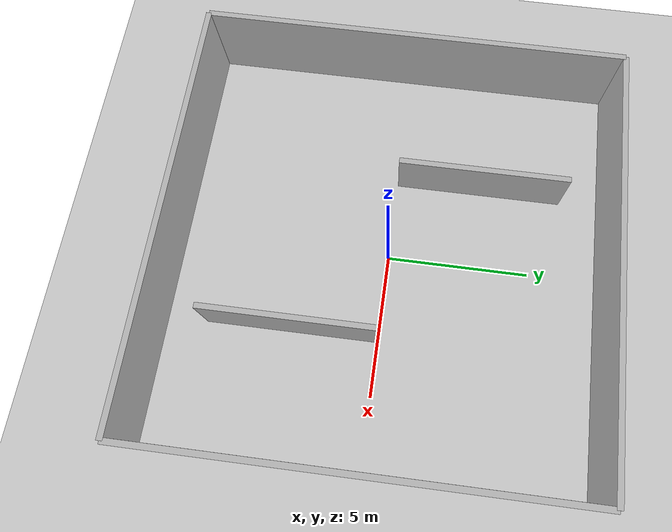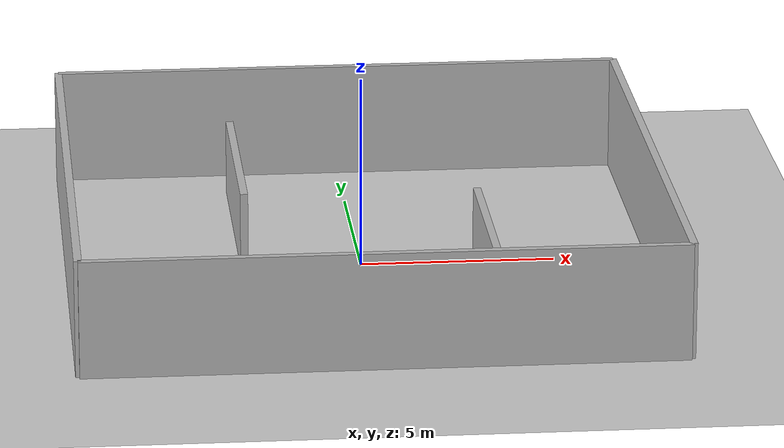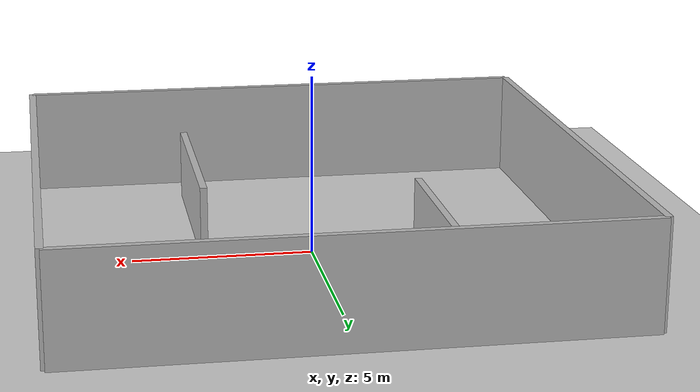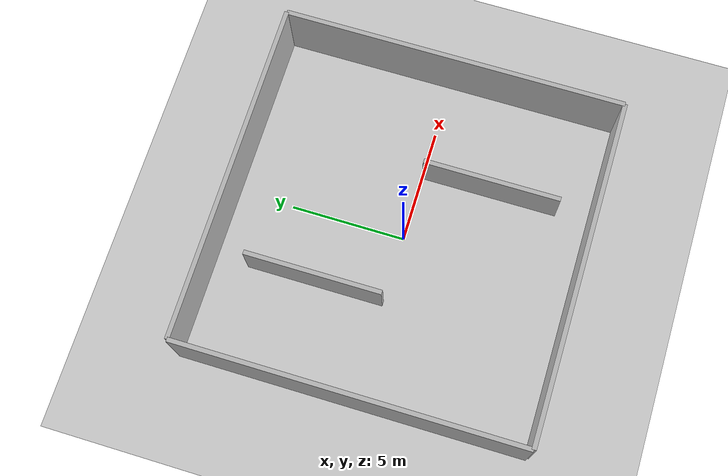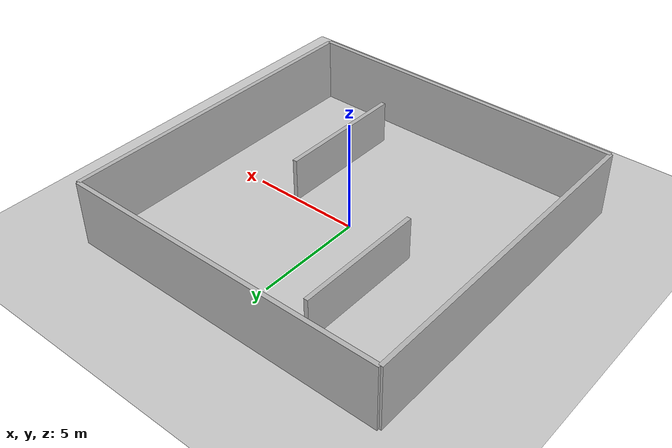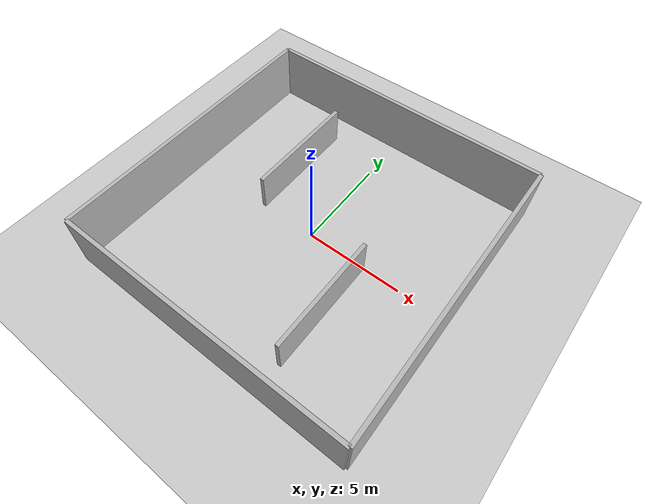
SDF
<sdf version="1.7">
  <world name="default">
    <include>
      <uri>model://sun</uri>
    </include>

    <!-- Define the walls -->
    <model name='ground_plane'>
      <static>1</static>
      <link name='link'>
        <collision name='collision'>
          <geometry>
            <plane>
              <normal>0 0 1</normal>
              <size>100 100</size>
            </plane>
          </geometry>
          <surface>
            <contact>
              <collide_bitmask>65535</collide_bitmask>
              <ode/>
            </contact>
            <friction>
              <ode>
                <mu>100</mu>
                <mu2>50</mu2>
              </ode>
              <torsional>
                <ode/>
              </torsional>
            </friction>
            <bounce/>
          </surface>
          <max_contacts>10</max_contacts>
        </collision>
        <visual name='visual'>
          <cast_shadows>0</cast_shadows>
          <geometry>
            <plane>
              <normal>0 0 1</normal>
              <size>100 100</size>
            </plane>
          </geometry>
          <material>
            <script>
              <uri>file://media/materials/scripts/gazebo.material</uri>
              <name>Gazebo/Grey</name>
            </script>
          </material>
        </visual>
        <self_collide>0</self_collide>
        <enable_wind>0</enable_wind>
        <kinematic>0</kinematic>
      </link>
    </model>
    <gravity>0 0 -9.8</gravity>
    <magnetic_field>6e-06 2.3e-05 -4.2e-05</magnetic_field>
    <atmosphere type='adiabatic'/>
    <physics type='ode'>
      <max_step_size>0.001</max_step_size>
      <real_time_factor>1</real_time_factor>
      <real_time_update_rate>1000</real_time_update_rate>
    </physics>
    <scene>
      <ambient>0.4 0.4 0.4 1</ambient>
      <background>0.7 0.7 0.7 1</background>
      <shadows>1</shadows>
    </scene>
    <wind/>
    <spherical_coordinates>
      <surface_model>EARTH_WGS84</surface_model>
      <latitude_deg>0</latitude_deg>
      <longitude_deg>0</longitude_deg>
      <elevation>0</elevation>
      <heading_deg>0</heading_deg>
    </spherical_coordinates>

    <model name="wall_1">
      <static>true</static>
      <link name="link">
        <pose>0 7.5 1.5 0 0 0</pose> <!-- Shifted 7.5 meters along x-axis, centered vertically -->
        <collision name="collision">
          <geometry>
            <box>
              <size>15 0.2 3</size> <!-- 15m long, 0.2m thick, 3m high -->
            </box>
          </geometry>
        </collision>
        <visual name="visual">
          <geometry>
            <box>
              <size>15 0.2 3</size>
            </box>
          </geometry>
        </visual>
      </link>
    </model>

    <model name="wall_2">
      <static>true</static>
      <link name="link">
        <pose>0 -7.5 1.5 0 0 0</pose> <!-- Shifted 7.5 meters along y-axis, rotated 90 degrees, centered vertically -->
        <collision name="collision">
          <geometry>
            <box>
              <size>15 0.2 3</size>
            </box>
          </geometry>
        </collision>
        <visual name="visual">
          <geometry>
            <box>
              <size>15 0.2 3</size>
            </box>
          </geometry>
        </visual>
      </link>
    </model>

    <model name="wall_3">
      <static>true</static>
      <link name="link">
        <pose>-7.5 0 1.5 0 0 1.5708</pose> <!-- Shifted -7.5 meters along x-axis, centered vertically -->
        <collision name="collision">
          <geometry>
            <box>
              <size>15 0.2 3</size>
            </box>
          </geometry>
        </collision>
        <visual name="visual">
          <geometry>
            <box>
              <size>15 0.2 3</size>
            </box>
          </geometry>
        </visual>
      </link>
    </model>

    <model name="wall_4">
      <static>true</static>
      <link name="link">
        <pose>7.5 0 1.5 0 0 1.5708</pose> <!-- Shifted -7.5 meters along y-axis, rotated 90 degrees, centered vertically -->
        <collision name="collision">
          <geometry>
            <box>
              <size>15 0.2 3</size>
            </box>
          </geometry>
        </collision>
        <visual name="visual">
          <geometry>
            <box>
              <size>15 0.2 3</size>
            </box>
          </geometry>
        </visual>
      </link>
    </model>

    <model name="wall_5">
      <static>true</static>
      <link name="link">
        <pose>3 -3 1 0 0 1.5708</pose> <!-- Shifted -7.5 meters along y-axis, rotated 90 degrees, centered vertically -->
        <collision name="collision">
          <geometry>
            <box>
              <size>6 0.2 2</size>
            </box>
          </geometry>
        </collision>
        <visual name="visual">
          <geometry>
            <box>
              <size>6 0.2 2</size>
            </box>
          </geometry>
        </visual>
      </link>
    </model>

    <model name="wall_6">
      <static>true</static>
      <link name="link">
        <pose>-3 3 1 0 0 1.5708</pose> <!-- Shifted -7.5 meters along y-axis, rotated 90 degrees, centered vertically -->
        <collision name="collision">
          <geometry>
            <box>
              <size>6 0.2 2</size>
            </box>
          </geometry>
        </collision>
        <visual name="visual">
          <geometry>
            <box>
              <size>6 0.2 2</size>
            </box>
          </geometry>
        </visual>
      </link>
    </model>

  </world>
</sdf>
